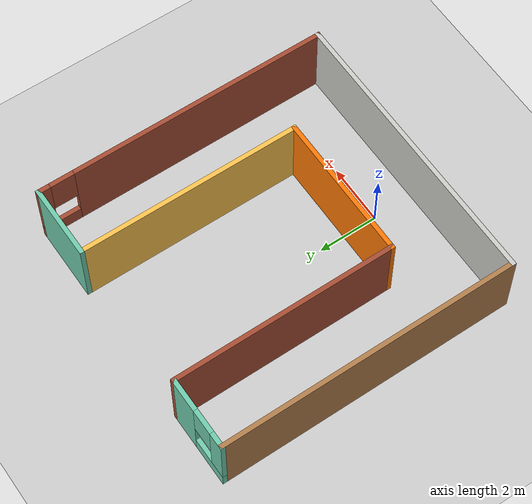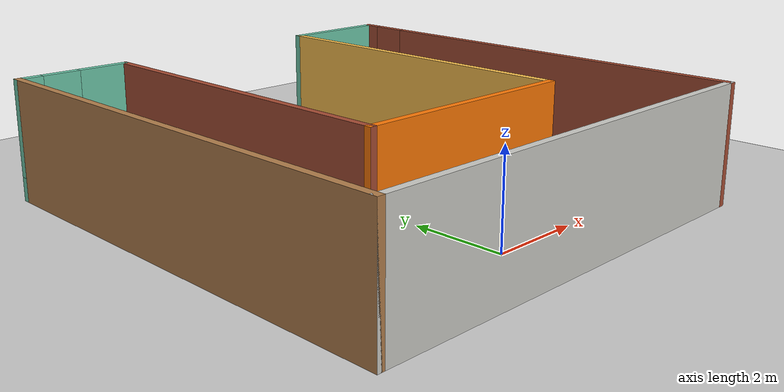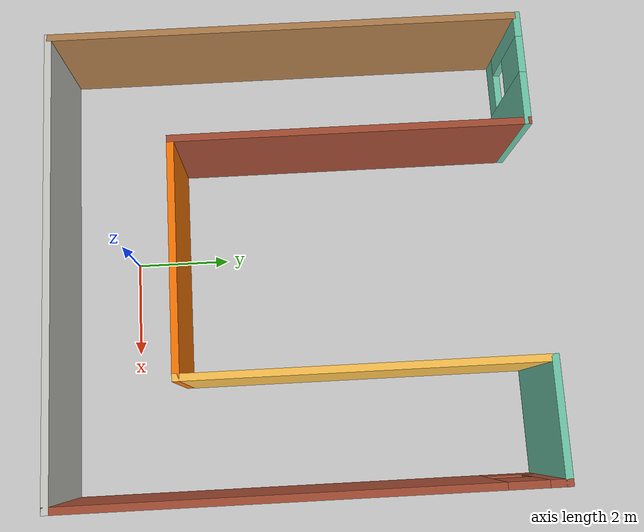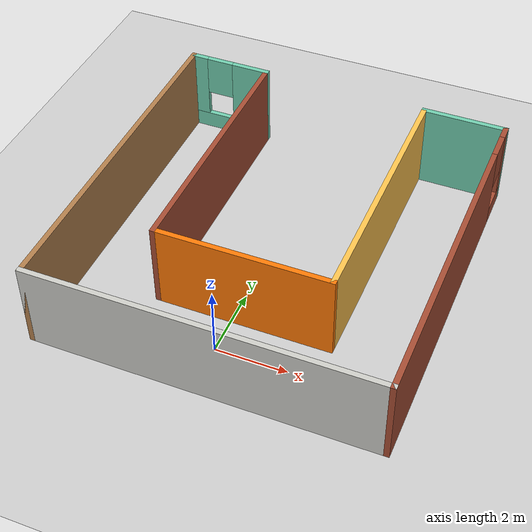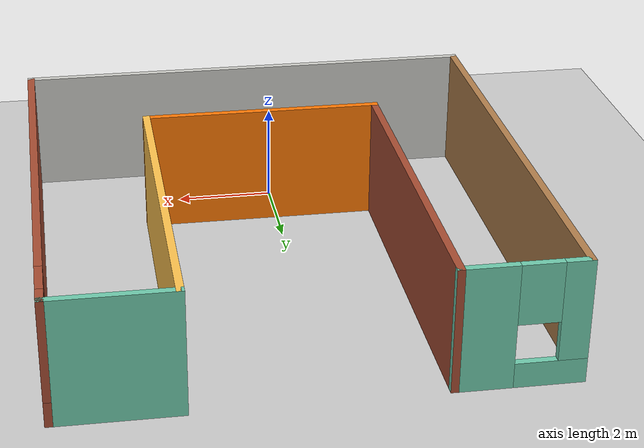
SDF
<sdf version="1.6">
 <world name="default">
  <light name="sun" type="directional">
   <pose>0 0 10 0 -0 0</pose>
   <diffuse>0.8 0.8 0.8 1</diffuse>
   <specular>0.1 0.1 0.1 1</specular>
   <attenuation>
    <range>1000</range>
    <constant>0.9</constant>
    <linear>0.01</linear>
    <quadratic>0.001</quadratic>
   </attenuation>
   <direction>-0.5 0.5 -1</direction>
  </light>
  <model name="ground_plane">
   <static>1</static>
   <link name="link">
    <collision name="collision">
     <geometry><plane><normal>0 0 1</normal><size>100 100</size></plane></geometry>
     <surface><friction><ode><mu>100</mu><mu2>50</mu2></ode></friction></surface>
    </collision>
    <visual name="visual">
     <cast_shadows>0</cast_shadows>
     <geometry><plane><normal>0 0 1</normal><size>100 100</size></plane></geometry>
     <material>
      <script><uri>file://media/materials/scripts/gazebo.material</uri><name>Gazebo/Grey</name></script>
     </material>
    </visual>
   </link>
  </model>
  <gravity>0 0 -9.8</gravity>
  <magnetic_field>6e-06 2.3e-05 -4.2e-05</magnetic_field>
  <atmosphere type="adiabatic"/>
  <physics name="default_physics" default="0" type="ode">
   <max_step_size>0.001</max_step_size>
   <real_time_factor>1</real_time_factor>
   <real_time_update_rate>1000</real_time_update_rate>
  </physics>
  <scene><ambient>0.4 0.4 0.4 1</ambient><background>0.7 0.7 0.7 1</background><shadows>1</shadows></scene>
  <spherical_coordinates>
   <surface_model>EARTH_WGS84</surface_model>
   <latitude_deg>0</latitude_deg>
   <longitude_deg>0</longitude_deg>
   <elevation>0</elevation>
   <heading_deg>0</heading_deg>
  </spherical_coordinates>
  <model name="home_world">
   <pose>0.314853 3.51289 0 0 -0 0</pose>
   <link name="Wall_25">
    <pose>4.775 0 0 0 -0 1.5708</pose>
    <visual name="Wall_25_Visual_0">
     <pose>-0.622531 0 1.25 0 -0 0</pose>
     <geometry><box><size>8.75494 0.15 2.5</size></box></geometry>
     <material>
      <script><uri>file://media/materials/scripts/gazebo.material</uri><name>Gazebo/Bricks</name></script>
      <ambient>1 0.764706 0.305882 1</ambient>
     </material>
    </visual>
    <collision name="Wall_25_Collision_0">
     <geometry><box><size>8.75494 0.15 2.5</size></box></geometry>
     <pose>-0.622531 0 1.25 0 -0 0</pose>
    </collision>
    <visual name="Wall_25_Visual_1">
     <pose>4.37747 0 0.25 0 -0 0</pose>
     <geometry><box><size>1.24506 0.15 0.5</size></box></geometry>
     <material>
      <script><uri>file://media/materials/scripts/gazebo.material</uri><name>Gazebo/Bricks</name></script>
      <ambient>1 0.764706 0.305882 1</ambient>
     </material>
    </visual>
    <collision name="Wall_25_Collision_1">
     <geometry><box><size>1.24506 0.15 0.5</size></box></geometry>
     <pose>4.37747 0 0.25 0 -0 0</pose>
    </collision>
    <visual name="Wall_25_Visual_2">
     <pose>4.77747 0 1.5 0 -0 0</pose>
     <geometry><box><size>0.445062 0.15 2</size></box></geometry>
     <material>
      <script><uri>file://media/materials/scripts/gazebo.material</uri><name>Gazebo/Bricks</name></script>
      <ambient>1 0.764706 0.305882 1</ambient>
     </material>
    </visual>
    <collision name="Wall_25_Collision_2">
     <geometry><box><size>0.445062 0.15 2</size></box></geometry>
     <pose>4.77747 0 1.5 0 -0 0</pose>
    </collision>
    <visual name="Wall_25_Visual_3">
     <pose>4.15494 0 1.9 0 -0 0</pose>
     <geometry><box><size>0.8 0.15 1.2</size></box></geometry>
     <material>
      <script><uri>file://media/materials/scripts/gazebo.material</uri><name>Gazebo/Bricks</name></script>
      <ambient>1 0.764706 0.305882 1</ambient>
     </material>
    </visual>
    <collision name="Wall_25_Collision_3">
     <geometry><box><size>0.8 0.15 1.2</size></box></geometry>
     <pose>4.15494 0 1.9 0 -0 0</pose>
    </collision>
   </link>
   <link name="Wall_26">
    <collision name="Wall_26_Collision">
     <geometry><box><size>2.5 0.15 2.5</size></box></geometry>
     <pose>0 0 1.25 0 -0 0</pose>
    </collision>
    <visual name="Wall_26_Visual">
     <pose>0 0 1.25 0 -0 0</pose>
     <geometry><box><size>2.5 0.15 2.5</size></box></geometry>
     <material>
      <script><uri>file://media/materials/scripts/gazebo.material</uri><name>Gazebo/Grey</name></script>
      <ambient>0.435294 0.796078 0.67451 1</ambient>
     </material>
    </visual>
    <pose>3.6 4.925 0 0 -0 3.14159</pose>
   </link>
   <link name="Wall_27">
    <collision name="Wall_27_Collision">
     <geometry><box><size>7.5 0.15 2.5</size></box></geometry>
     <pose>0 0 1.25 0 -0 0</pose>
    </collision>
    <visual name="Wall_27_Visual">
     <pose>0 0 1.25 0 -0 0</pose>
     <geometry><box><size>7.5 0.15 2.5</size></box></geometry>
     <material>
      <script><uri>file://media/materials/scripts/gazebo.material</uri><name>Gazebo/Grey</name></script>
      <ambient>1 0.764706 0.305882 1</ambient>
     </material>
    </visual>
    <pose>2.425 1.25 0 0 0 -1.5708</pose>
   </link>
   <link name="Wall_28">
    <collision name="Wall_28_Collision">
     <geometry><box><size>5 0.15 2.5</size></box></geometry>
     <pose>0 0 1.25 0 -0 0</pose>
    </collision>
    <visual name="Wall_28_Visual">
     <pose>0 0 1.25 0 -0 0</pose>
     <geometry><box><size>5 0.15 2.5</size></box></geometry>
     <material>
      <script><uri>file://media/materials/scripts/gazebo.material</uri><name>Gazebo/Grey</name></script>
      <ambient>0.996078 0.47451 0.0196078 1</ambient>
     </material>
    </visual>
    <pose>0 -2.425 0 0 -0 3.14159</pose>
   </link>
   <link name="Wall_29">
    <collision name="Wall_29_Collision">
     <geometry><box><size>7.5 0.15 2.5</size></box></geometry>
     <pose>0 0 1.25 0 -0 0</pose>
    </collision>
    <visual name="Wall_29_Visual">
     <pose>0 0 1.25 0 -0 0</pose>
     <geometry><box><size>7.5 0.15 2.5</size></box></geometry>
     <material>
      <script><uri>file://media/materials/scripts/gazebo.material</uri><name>Gazebo/Bricks</name></script>
      <ambient>0.921569 0.807843 0.615686 1</ambient>
     </material>
    </visual>
    <pose>-2.425 1.25 0 0 -0 1.5708</pose>
   </link>
   <link name="Wall_36">
    <pose>-3.6 4.925 0 0 -0 3.14159</pose>
    <visual name="Wall_36_Visual_0">
     <pose>-0.67663 0 1.25 0 -0 0</pose>
     <geometry><box><size>1.14674 0.15 2.5</size></box></geometry>
     <material>
      <script><uri>file://media/materials/scripts/gazebo.material</uri><name>Gazebo/Grey</name></script>
      <ambient>0.435294 0.796078 0.67451 1</ambient>
     </material>
    </visual>
    <collision name="Wall_36_Collision_0">
     <geometry><box><size>1.14674 0.15 2.5</size></box></geometry>
     <pose>-0.67663 0 1.25 0 -0 0</pose>
    </collision>
    <visual name="Wall_36_Visual_1">
     <pose>0.57337 0 0.25 0 -0 0</pose>
     <geometry><box><size>1.35326 0.15 0.5</size></box></geometry>
     <material>
      <script><uri>file://media/materials/scripts/gazebo.material</uri><name>Gazebo/Grey</name></script>
      <ambient>0.435294 0.796078 0.67451 1</ambient>
     </material>
    </visual>
    <collision name="Wall_36_Collision_1">
     <geometry><box><size>1.35326 0.15 0.5</size></box></geometry>
     <pose>0.57337 0 0.25 0 -0 0</pose>
    </collision>
    <visual name="Wall_36_Visual_2">
     <pose>0.97337 0 1.5 0 -0 0</pose>
     <geometry><box><size>0.553259 0.15 2</size></box></geometry>
     <material>
      <script><uri>file://media/materials/scripts/gazebo.material</uri><name>Gazebo/Grey</name></script>
      <ambient>0.435294 0.796078 0.67451 1</ambient>
     </material>
    </visual>
    <collision name="Wall_36_Collision_2">
     <geometry><box><size>0.553259 0.15 2</size></box></geometry>
     <pose>0.97337 0 1.5 0 -0 0</pose>
    </collision>
    <visual name="Wall_36_Visual_3">
     <pose>0.296741 0 1.9 0 -0 0</pose>
     <geometry><box><size>0.8 0.15 1.2</size></box></geometry>
     <material>
      <script><uri>file://media/materials/scripts/gazebo.material</uri><name>Gazebo/Grey</name></script>
      <ambient>0.435294 0.796078 0.67451 1</ambient>
     </material>
    </visual>
    <collision name="Wall_36_Collision_3">
     <geometry><box><size>0.8 0.15 1.2</size></box></geometry>
     <pose>0.296741 0 1.9 0 -0 0</pose>
    </collision>
   </link>
   <link name="Wall_37">
    <collision name="Wall_37_Collision">
     <geometry><box><size>10 0.15 2.5</size></box></geometry>
     <pose>0 0 1.25 0 -0 0</pose>
    </collision>
    <visual name="Wall_37_Visual">
     <pose>0 0 1.25 0 -0 0</pose>
     <geometry><box><size>10 0.15 2.5</size></box></geometry>
     <material>
      <script><uri>file://media/materials/scripts/gazebo.material</uri><name>Gazebo/Wood</name></script>
      <ambient>1 0.764706 0.305882 1</ambient>
     </material>
    </visual>
    <pose>-4.775 0 0 0 0 -1.5708</pose>
   </link>
   <link name="Wall_39">
    <collision name="Wall_39_Collision">
     <geometry><box><size>9.7 0.15 2.5</size></box></geometry>
     <pose>0 0 1.25 0 -0 0</pose>
    </collision>
    <visual name="Wall_39_Visual">
     <pose>0 0 1.25 0 -0 0</pose>
     <geometry><box><size>9.7 0.15 2.5</size></box></geometry>
     <material>
      <script><uri>file://media/materials/scripts/gazebo.material</uri><name>Gazebo/CeilingTiled</name></script>
      <ambient>1 1 1 1</ambient>
     </material>
    </visual>
    <pose>0 -4.925 0 0 -0 0</pose>
   </link>
   <static>1</static>
  </model>
 </world>
</sdf>
